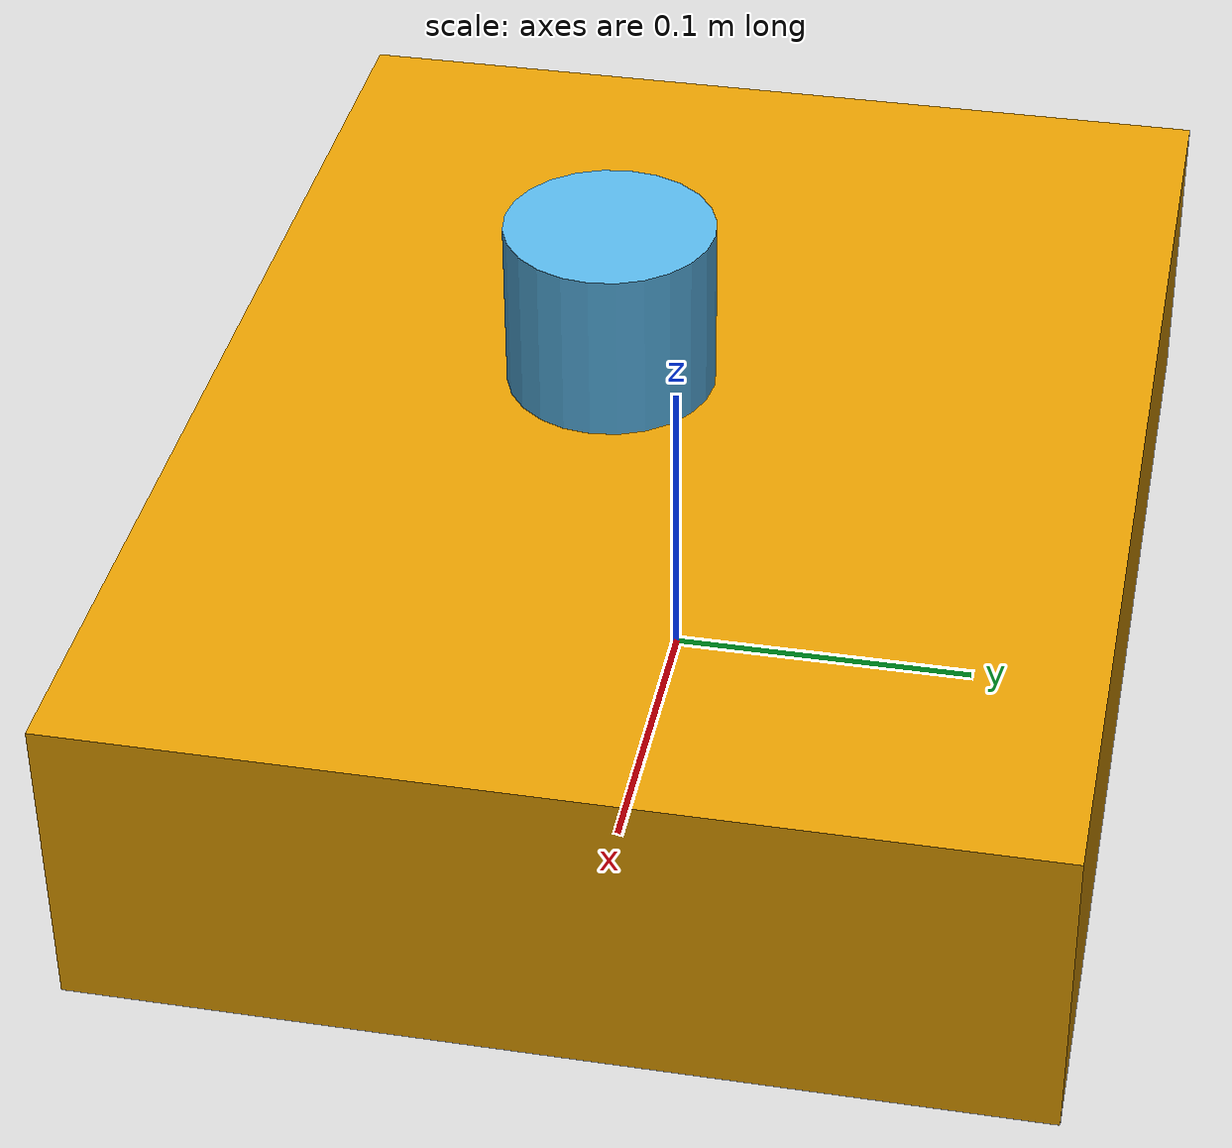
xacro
<?xml version="1.0"?>
<robot xmlns:xacro="http://www.ros.org/wiki/xacro" name="robot">

  <!-- ===== Parameters ===== -->
  <xacro:arg name="laser_x" default="0.10"/>
  <xacro:arg name="laser_y" default="0.00"/>
  <xacro:arg name="laser_z" default="0.20"/>
  <xacro:arg name="laser_roll" default="0.0"/>
  <xacro:arg name="laser_pitch" default="0.0"/>
  <xacro:arg name="laser_yaw" default="0.0"/>

  <!-- ===== Links ===== -->
  <link name="base_link">
    <inertial>
      <origin xyz="0 0 0" rpy="0 0 0"/>
      <mass value="10.0"/>
      <inertia ixx="0.1" ixy="0.0" ixz="0.0" iyy="0.1" iyz="0.0" izz="0.1"/>
    </inertial>
    <visual>
      <origin xyz="0 0 0.05" rpy="0 0 0"/>
      <geometry>
        <box size="0.40 0.30 0.10"/>
      </geometry>
    </visual>
    <collision>
      <origin xyz="0 0 0.05" rpy="0 0 0"/>
      <geometry>
        <box size="0.40 0.30 0.10"/>
      </geometry>
    </collision>
  </link>

  <link name="laser">
    <visual>
      <origin xyz="0 0 0" rpy="0 0 0"/>
      <geometry>
        <cylinder radius="0.03" length="0.05"/>
      </geometry>
    </visual>
  </link>

  <!-- ===== Joints ===== -->
  <joint name="base_to_laser" type="fixed">
    <parent link="base_link"/>
    <child link="laser"/>
    <origin xyz="$(arg laser_x) $(arg laser_y) $(arg laser_z)" rpy="$(arg laser_roll) $(arg laser_pitch) $(arg laser_yaw)"/>
  </joint>

</robot>
